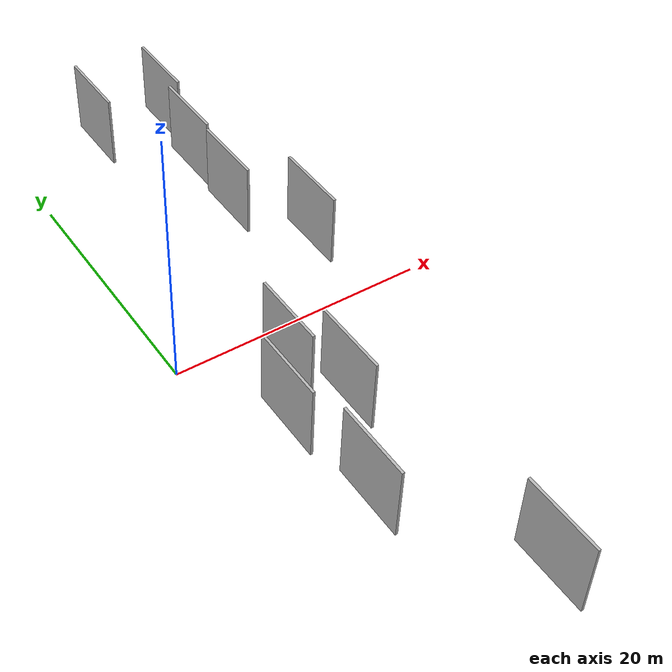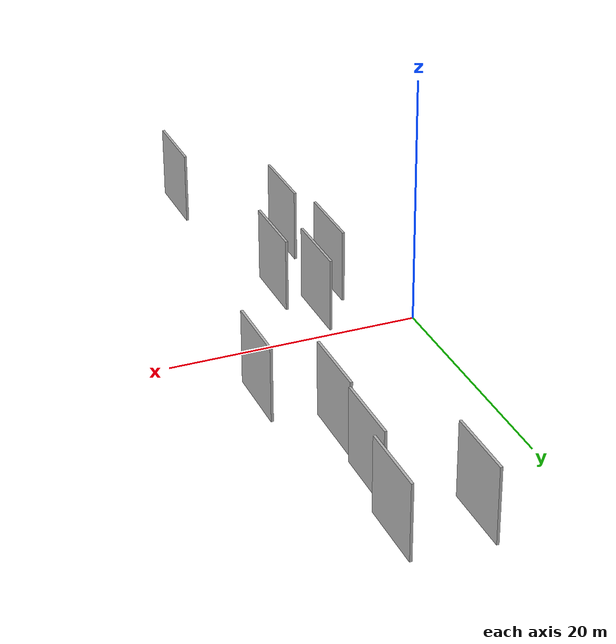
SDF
<sdf version="1.6">
 <world name="default">
  <scene>
   <sky><clouds><speed>12</speed></clouds></sky>
   <ambient>0.4 0.4 0.4 1</ambient>
   <background>0.7 0.7 0.7 1</background>
   <shadows>1</shadows>
  </scene>
  <gravity>0 0 -9.8066</gravity>
  <magnetic_field>6e-06 2.3e-05 -4.2e-05</magnetic_field>
  <physics default="0" name="default_physics" type="ode">
   <ode>
    <solver>
     <type>quick</type>
     <iters>10</iters>
     <sor>1.0</sor>
     <use_dynamic_moi_rescaling>0</use_dynamic_moi_rescaling>
    </solver>
    <constraints>
     <cfm>0</cfm>
     <erp>0.2</erp>
     <contact_max_correcting_vel>100</contact_max_correcting_vel>
     <contact_surface_layer>0.001</contact_surface_layer>
    </constraints>
   </ode>
   <max_step_size>0.004</max_step_size>
   <real_time_factor>1</real_time_factor>
   <real_time_update_rate>250</real_time_update_rate>
  </physics>
  <light name="sun" type="directional">
   <pose>0 0 10 0 0 0</pose>
   <diffuse>0.8 0.8 0.8 1</diffuse>
   <specular>0.2 0.2 0.2 1</specular>
   <attenuation>
    <range>1000</range>
    <constant>0.9</constant>
    <linear>0.01</linear>
    <quadratic>0.001</quadratic>
   </attenuation>
   <direction>-0.5 0.1 -0.9</direction>
  </light>
  <model name="grey_wall_1">
   <static>1</static>
   <pose>10.8013 -25.9685 0.0 0.000000 0.000000 1.570796</pose>
   <link name="link">
    <pose>0 0 3.00 0 0 0</pose>
    <collision name="collision"><geometry><box><size>6.00 0.2 6.00</size></box></geometry></collision>
    <visual name="visual">
     <cast_shadows>0</cast_shadows>
     <geometry><box><size>6.00 0.2 6.00</size></box></geometry>
     <material>
      <script>
       <uri>model://HANNAS_wall/materials/scripts</uri>
       <uri>model://HANNAS_wall/materials/textures</uri>
       <name>vrc/HANNAS_wall</name>
      </script>
     </material>
    </visual>
   </link>
  </model>
  <model name="grey_wall_2">
   <static>1</static>
   <pose>12.3712 19.5434 0.0 0.000000 0.000000 1.570796</pose>
   <link name="link">
    <pose>0 0 3.00 0 0 0</pose>
    <collision name="collision"><geometry><box><size>6.00 0.2 6.00</size></box></geometry></collision>
    <visual name="visual">
     <cast_shadows>0</cast_shadows>
     <geometry><box><size>6.00 0.2 6.00</size></box></geometry>
     <material>
      <script>
       <uri>model://HANNAS_wall/materials/scripts</uri>
       <uri>model://HANNAS_wall/materials/textures</uri>
       <name>vrc/HANNAS_wall</name>
      </script>
     </material>
    </visual>
   </link>
  </model>
  <model name="grey_wall_3">
   <static>1</static>
   <pose>3.9165 -7.7971 0.0 0.000000 0.000000 1.570796</pose>
   <link name="link">
    <pose>0 0 3.00 0 0 0</pose>
    <collision name="collision"><geometry><box><size>6.00 0.2 6.00</size></box></geometry></collision>
    <visual name="visual">
     <cast_shadows>0</cast_shadows>
     <geometry><box><size>6.00 0.2 6.00</size></box></geometry>
     <material>
      <script>
       <uri>model://HANNAS_wall/materials/scripts</uri>
       <uri>model://HANNAS_wall/materials/textures</uri>
       <name>vrc/HANNAS_wall</name>
      </script>
     </material>
    </visual>
   </link>
  </model>
  <model name="grey_wall_4">
   <static>1</static>
   <pose>6.6127 -3.7746 0.0 0.000000 0.000000 1.570796</pose>
   <link name="link">
    <pose>0 0 3.00 0 0 0</pose>
    <collision name="collision"><geometry><box><size>6.00 0.2 6.00</size></box></geometry></collision>
    <visual name="visual">
     <cast_shadows>0</cast_shadows>
     <geometry><box><size>6.00 0.2 6.00</size></box></geometry>
     <material>
      <script>
       <uri>model://HANNAS_wall/materials/scripts</uri>
       <uri>model://HANNAS_wall/materials/textures</uri>
       <name>vrc/HANNAS_wall</name>
      </script>
     </material>
    </visual>
   </link>
  </model>
  <model name="grey_wall_5">
   <static>1</static>
   <pose>7.2850 26.1290 0.0 0.000000 0.000000 1.570796</pose>
   <link name="link">
    <pose>0 0 3.00 0 0 0</pose>
    <collision name="collision"><geometry><box><size>6.00 0.2 6.00</size></box></geometry></collision>
    <visual name="visual">
     <cast_shadows>0</cast_shadows>
     <geometry><box><size>6.00 0.2 6.00</size></box></geometry>
     <material>
      <script>
       <uri>model://HANNAS_wall/materials/scripts</uri>
       <uri>model://HANNAS_wall/materials/textures</uri>
       <name>vrc/HANNAS_wall</name>
      </script>
     </material>
    </visual>
   </link>
  </model>
  <model name="grey_wall_6">
   <static>1</static>
   <pose>4.8191 -15.8236 0.0 0.000000 0.000000 1.570796</pose>
   <link name="link">
    <pose>0 0 3.00 0 0 0</pose>
    <collision name="collision"><geometry><box><size>6.00 0.2 6.00</size></box></geometry></collision>
    <visual name="visual">
     <cast_shadows>0</cast_shadows>
     <geometry><box><size>6.00 0.2 6.00</size></box></geometry>
     <material>
      <script>
       <uri>model://HANNAS_wall/materials/scripts</uri>
       <uri>model://HANNAS_wall/materials/textures</uri>
       <name>vrc/HANNAS_wall</name>
      </script>
     </material>
    </visual>
   </link>
  </model>
  <model name="grey_wall_7">
   <static>1</static>
   <pose>15.5075 6.8155 0.0 0.000000 0.000000 1.570796</pose>
   <link name="link">
    <pose>0 0 3.00 0 0 0</pose>
    <collision name="collision"><geometry><box><size>6.00 0.2 6.00</size></box></geometry></collision>
    <visual name="visual">
     <cast_shadows>0</cast_shadows>
     <geometry><box><size>6.00 0.2 6.00</size></box></geometry>
     <material>
      <script>
       <uri>model://HANNAS_wall/materials/scripts</uri>
       <uri>model://HANNAS_wall/materials/textures</uri>
       <name>vrc/HANNAS_wall</name>
      </script>
     </material>
    </visual>
   </link>
  </model>
  <model name="grey_wall_8">
   <static>1</static>
   <pose>8.5743 -8.0590 0.0 0.000000 0.000000 1.570796</pose>
   <link name="link">
    <pose>0 0 3.00 0 0 0</pose>
    <collision name="collision"><geometry><box><size>6.00 0.2 6.00</size></box></geometry></collision>
    <visual name="visual">
     <cast_shadows>0</cast_shadows>
     <geometry><box><size>6.00 0.2 6.00</size></box></geometry>
     <material>
      <script>
       <uri>model://HANNAS_wall/materials/scripts</uri>
       <uri>model://HANNAS_wall/materials/textures</uri>
       <name>vrc/HANNAS_wall</name>
      </script>
     </material>
    </visual>
   </link>
  </model>
  <model name="grey_wall_9">
   <static>1</static>
   <pose>12.0520 13.0531 0.0 0.000000 0.000000 1.570796</pose>
   <link name="link">
    <pose>0 0 3.00 0 0 0</pose>
    <collision name="collision"><geometry><box><size>6.00 0.2 6.00</size></box></geometry></collision>
    <visual name="visual">
     <cast_shadows>0</cast_shadows>
     <geometry><box><size>6.00 0.2 6.00</size></box></geometry>
     <material>
      <script>
       <uri>model://HANNAS_wall/materials/scripts</uri>
       <uri>model://HANNAS_wall/materials/textures</uri>
       <name>vrc/HANNAS_wall</name>
      </script>
     </material>
    </visual>
   </link>
  </model>
  <model name="grey_wall_10">
   <static>1</static>
   <pose>13.2438 25.6578 0.0 0.000000 0.000000 1.570796</pose>
   <link name="link">
    <pose>0 0 3.00 0 0 0</pose>
    <collision name="collision"><geometry><box><size>6.00 0.2 6.00</size></box></geometry></collision>
    <visual name="visual">
     <cast_shadows>0</cast_shadows>
     <geometry><box><size>6.00 0.2 6.00</size></box></geometry>
     <material>
      <script>
       <uri>model://HANNAS_wall/materials/scripts</uri>
       <uri>model://HANNAS_wall/materials/textures</uri>
       <name>vrc/HANNAS_wall</name>
      </script>
     </material>
    </visual>
   </link>
  </model>
 </world>
</sdf>
